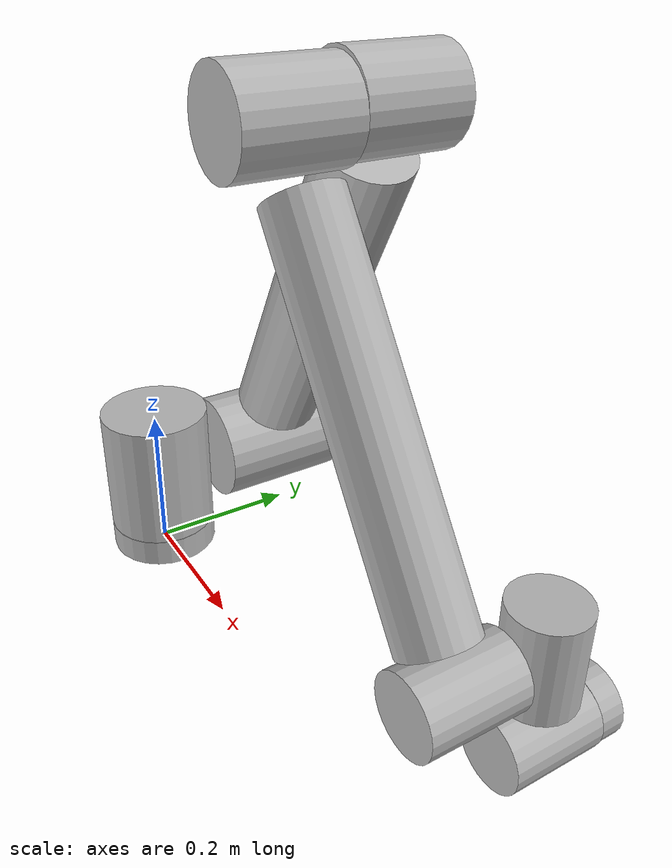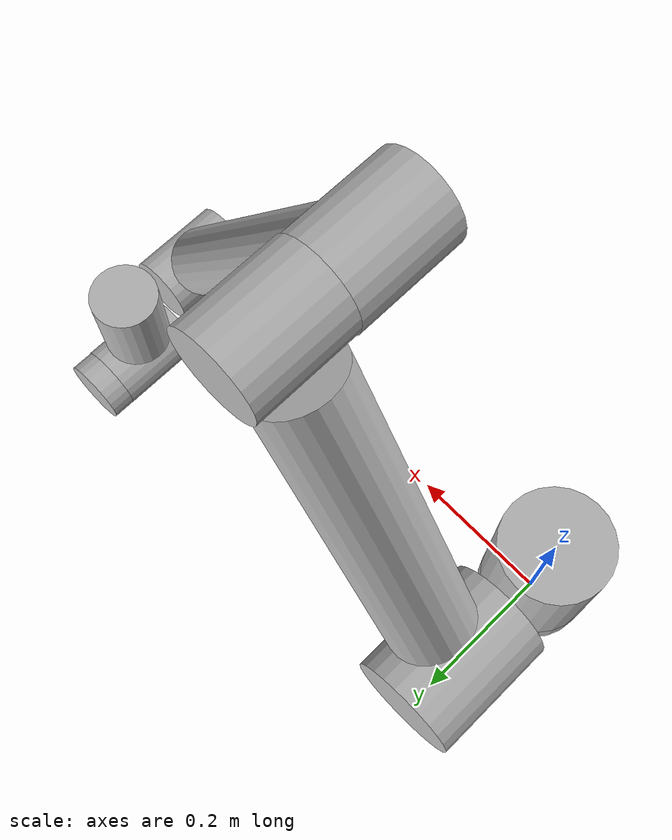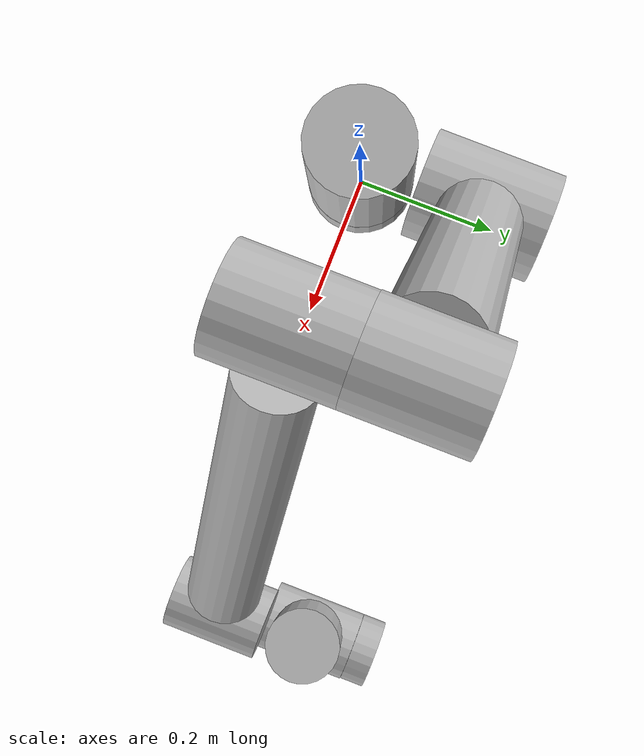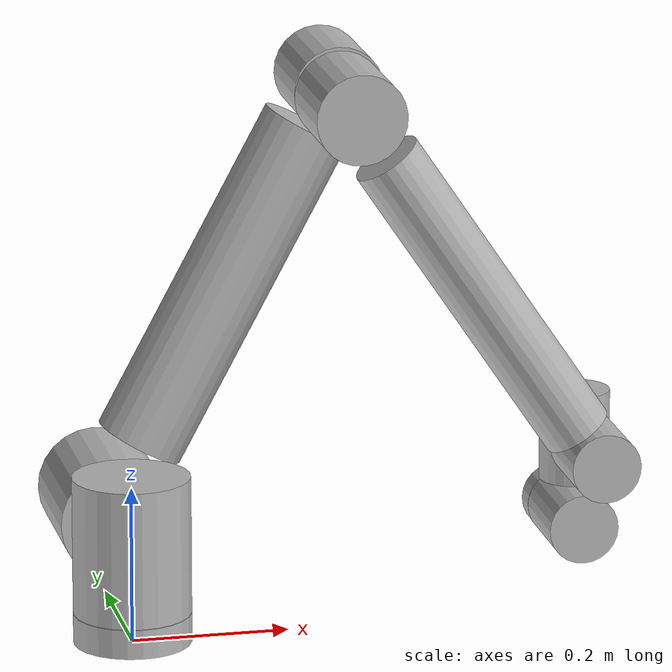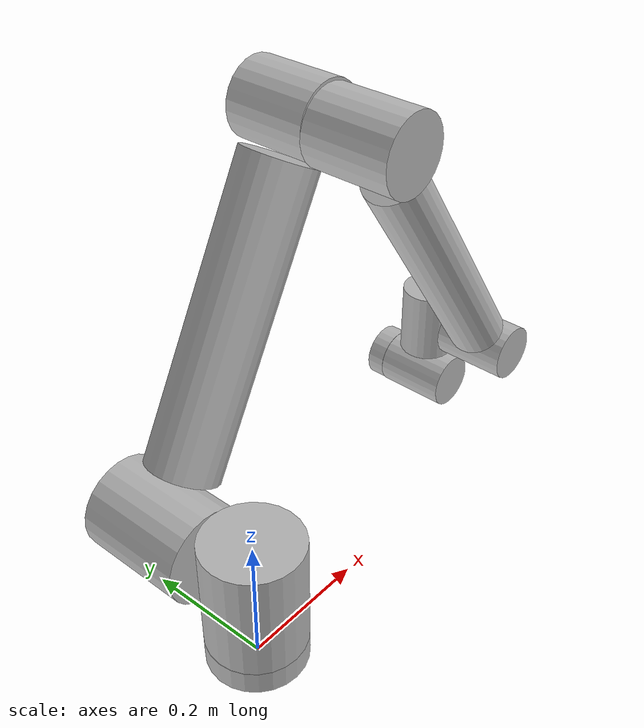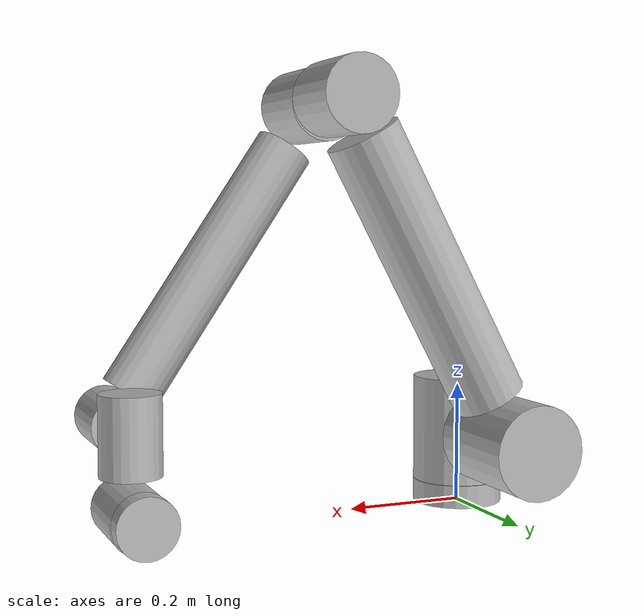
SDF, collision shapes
<?xml version='1.0'?>
<sdf version='1.5'>
  <model name='ur10'>
    <link name='base'>
      <inertial>
        <mass>4</mass>
        <inertia>
          <ixx>0.00610633</ixx>
          <ixy>0</ixy>
          <ixz>0</ixz>
          <iyy>0.00610633</iyy>
          <iyz>0</iyz>
          <izz>0.01125</izz>
        </inertia>
      </inertial>
      <collision name='collision'>
      <pose>0 0 0.019 0 -0 0</pose>
        <geometry>
          <cylinder>
            <radius>0.075</radius>
            <length>0.038</length>
          </cylinder>
        </geometry>
      </collision>
      <visual name='visual'>
        <geometry>
          <mesh>
            <uri>model://h_ur10/meshes/base.dae</uri>
          </mesh>
        </geometry>
      </visual>
    </link>
    <link name='shoulder'>
      <pose>0 0 .1273 0 -0 0</pose>
      <inertial>
        <mass>7.778</mass>
        <inertia>
          <ixx>0.0314743</ixx>
          <ixy>0</ixy>
          <ixz>0</ixz>
          <iyy>0.0314743</iyy>
          <iyz>0</iyz>
          <izz>0.0218756</izz>
        </inertia>
      </inertial>
      <collision name='collision'>
        <geometry>
          <cylinder>
            <radius>0.075</radius>
            <length>0.177</length>
          </cylinder>
        </geometry>
      </collision>
      <visual name='visual'>
        <geometry>
          <mesh>
            <uri>model://h_ur10/meshes/shoulder.dae</uri>
          </mesh>
        </geometry>
      </visual>
    </link>

    <link name='upper_arm'>
      <pose>0 0.220941 0.1273 0.000000 0.495268 0.000000</pose>
      <inertial>
        <pose>0 0 0.306 0 0 0</pose>
        <mass>12.93</mass>
        <inertia>
          <ixx>0.421754</ixx>
          <ixy>0</ixy>
          <ixz>0</ixz>
          <iyy>0.421754</iyy>
          <iyz>0</iyz>
          <izz>0.0363656</izz>
        </inertia>
      </inertial>

      <collision name='collision1'>
        <pose>0 -0.045 0 1.5707 0 0</pose>
        <geometry>
          <cylinder>
            <radius>0.075</radius>
            <length>0.177</length>
          </cylinder>
        </geometry>
      </collision>

      <collision name='collision2'>
        <pose>0 -0.0436 0.32 0 0 1.5707</pose>
        <geometry>
          <cylinder>
            <radius>0.058</radius>
            <length>0.461</length>
          </cylinder>
        </geometry>
      </collision>

      <collision name='collision3'>
        <pose>0 -0.040 0.613 1.5707 0 0</pose>
        <geometry>
          <cylinder>
            <radius>0.058</radius>
            <length>0.129</length>
          </cylinder>
        </geometry>
      </collision>

      <visual name='visual'>
        <geometry>
          <mesh>
            <uri>model://h_ur10/meshes/upperarm.dae</uri>
          </mesh>
        </geometry>
      </visual>
    </link>

    <link name='forearm'>
      <pose>0.290881 0.049041 0.663009 -3.141590 0.593801 -3.141589</pose>
      <inertial>
        <pose>0 0 0.28615 0 -0 0</pose>
        <mass>3.87</mass>
        <inertia>
          <ixx>0.11107</ixx>
          <ixy>0</ixy>
          <ixz>0</ixz>
          <iyy>0.11107</iyy>
          <iyz>0</iyz>
          <izz>0.0108844</izz>
        </inertia>
      </inertial>
      <collision name='collision1'>
        <pose>0 0 0.001 1.5707 0 0</pose>
        <geometry>
          <cylinder>
            <radius>0.058</radius>
            <length>0.136</length>
          </cylinder>
        </geometry>
      </collision>

      <collision name='collision2'>
        <pose>0 0 0.305 0 0 1.5707</pose>
        <geometry>
          <cylinder>
            <radius>0.045</radius>
            <length>0.447</length>
          </cylinder>
        </geometry>
      </collision>

      <collision name='collision3'>
        <pose>0 0.001 0.5735 1.5707 0 0</pose>
        <geometry>
          <cylinder>
            <radius>0.045</radius>
            <length>0.119</length>
          </cylinder>
        </geometry>
      </collision>

      <visual name='visua'>
        <geometry>
          <mesh>
            <uri>model://h_ur10/meshes/forearm.dae</uri>
          </mesh>
        </geometry>
      </visual>
    </link>

    <link name='wrist_1'>
      <pose>0.612763 0.048289 0.188032 3.14159 0.000000 3.14159</pose>
      <inertial>
        <mass>1.96</mass>
        <inertia>
          <ixx>0.00510825</ixx>
          <ixy>0</ixy>
          <ixz>0</ixz>
          <iyy>0.00510825</iyy>
          <iyz>0</iyz>
          <izz>0.0055125</izz>
        </inertia>
      </inertial>
      <collision name='collision'>
        <pose>0 0.115 0.0025 0 0 0</pose>
        <geometry>
          <cylinder>
            <radius>0.0455</radius>
            <length>0.119</length>
          </cylinder>
        </geometry>
      </collision>
      <visual name='visual'>
        <geometry>
          <mesh>
            <uri>model://h_ur10/meshes/wrist1.dae</uri>
          </mesh>
        </geometry>
      </visual>
    </link>

    <link name='wrist_2'>
      <pose>0.612784 0.163041 0.188126 3.14159 0.000000 3.14159</pose>
      <inertial>
        <mass>1.96</mass>
        <inertia>
          <ixx>0.00510825</ixx>
          <ixy>0</ixy>
          <ixz>0</ixz>
          <iyy>0.00510825</iyy>
          <iyz>0</iyz>
          <izz>0.0055125</izz>
        </inertia>
      </inertial>
      <collision name='collision'>
        <pose>0 0.002 0.11659 1.5707 0 0</pose>
        <geometry>
          <cylinder>
            <radius>0.0455</radius>
            <length>0.119</length>
          </cylinder>
        </geometry>
      </collision>
      <visual name='visual'>
        <geometry>
          <mesh>
            <uri>model://h_ur10/meshes/wrist2.dae</uri>
          </mesh>
        </geometry>
      </visual>
    </link>

    <link name='wrist_3'>
      <pose>0.612058 0.163655 0.072656 3.14159 3.58979e-09 3.14159</pose>
      <inertial>
        <mass>0.202</mass>
        <inertia>
          <ixx>0.000526462</ixx>
          <ixy>0</ixy>
          <ixz>0</ixz>
          <iyy>0.000526462</iyy>
          <iyz>0</iyz>
          <izz>0.000568125</izz>
        </inertia>
      </inertial>
      <collision name='collision'>
        <pose>0 0.0765 0 1.5707 0 0</pose>
        <geometry>
          <cylinder>
            <radius>0.045</radius>
            <length>0.031</length>
          </cylinder>
        </geometry>
      </collision>
      <visual name='visual'>
        <geometry>
          <mesh>
            <uri>model://h_ur10/meshes/wrist3.dae</uri>
          </mesh>
        </geometry>
      </visual>
    </link>
    <static>1</static>
  </model>
</sdf>
